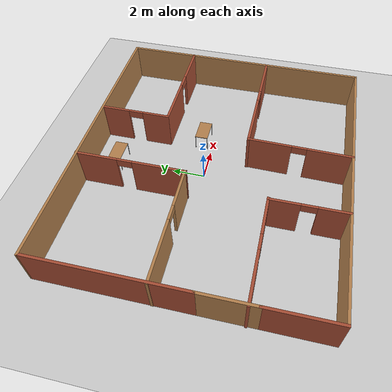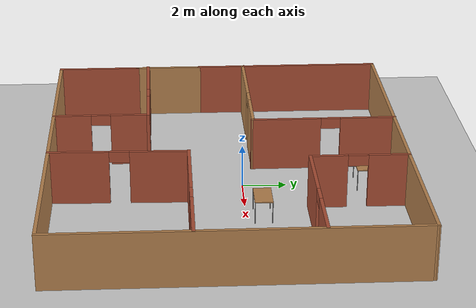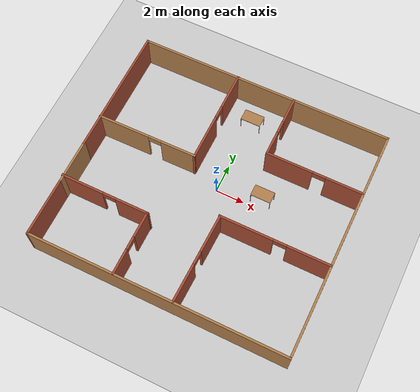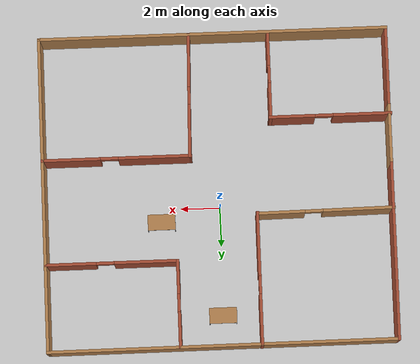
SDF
<sdf version="1.6">
 <world name="default">
  <model name="ground_plane">
   <static>1</static>
   <link name="link">
    <collision name="collision">
     <geometry><plane><normal>0 0 1</normal><size>100 100</size></plane></geometry>
     <surface><friction><ode><mu>100</mu><mu2>50</mu2></ode></friction></surface>
    </collision>
    <visual name="visual">
     <cast_shadows>0</cast_shadows>
     <geometry><plane><normal>0 0 1</normal><size>100 100</size></plane></geometry>
     <material>
      <script><uri>file://media/materials/scripts/gazebo.material</uri><name>Gazebo/Grey</name></script>
     </material>
    </visual>
   </link>
  </model>
  <model name="my_building">
   <pose>0.059936 -0.714894 0 0 -0 0</pose>
   <link name="Wall_1">
    <collision name="Wall_1_Collision">
     <geometry><box><size>3.25 0.15 2.5</size></box></geometry>
     <pose>0 0 1.25 0 -0 0</pose>
    </collision>
    <visual name="Wall_1_Visual">
     <pose>0 0 1.25 0 -0 0</pose>
     <geometry><box><size>3.25 0.15 2.5</size></box></geometry>
     <material>
      <script><uri>file://media/materials/scripts/gazebo.material</uri><name>Gazebo/Wood</name></script>
      <ambient>1 1 1 1</ambient>
     </material>
    </visual>
    <pose>-8.76994 -2.52511 0 0 0 -1.5708</pose>
   </link>
   <link name="Wall_10">
    <pose>-1.91645 4.60169 0 0 -0 1.5708</pose>
    <visual name="Wall_10_Visual_0">
     <pose>-1.75539 0 1.25 0 -0 0</pose>
     <geometry><box><size>3.26293 0.15 2.5</size></box></geometry>
     <material>
      <script><uri>file://media/materials/scripts/gazebo.material</uri><name>Gazebo/Bricks</name></script>
      <ambient>1 1 1 1</ambient>
     </material>
    </visual>
    <collision name="Wall_10_Collision_0">
     <geometry><box><size>3.26293 0.15 2.5</size></box></geometry>
     <pose>-1.75539 0 1.25 0 -0 0</pose>
    </collision>
    <visual name="Wall_10_Visual_1">
     <pose>2.08147 0 1.25 0 -0 0</pose>
     <geometry><box><size>2.61077 0.15 2.5</size></box></geometry>
     <material>
      <script><uri>file://media/materials/scripts/gazebo.material</uri><name>Gazebo/Bricks</name></script>
      <ambient>1 1 1 1</ambient>
     </material>
    </visual>
    <collision name="Wall_10_Collision_1">
     <geometry><box><size>2.61077 0.15 2.5</size></box></geometry>
     <pose>2.08147 0 1.25 0 -0 0</pose>
    </collision>
    <visual name="Wall_10_Visual_2">
     <pose>0.326079 0 2.25 0 -0 0</pose>
     <geometry><box><size>0.9 0.15 0.5</size></box></geometry>
     <material>
      <script><uri>file://media/materials/scripts/gazebo.material</uri><name>Gazebo/Bricks</name></script>
      <ambient>1 1 1 1</ambient>
     </material>
    </visual>
    <collision name="Wall_10_Collision_2">
     <geometry><box><size>0.9 0.15 0.5</size></box></geometry>
     <pose>0.326079 0 2.25 0 -0 0</pose>
    </collision>
   </link>
   <link name="Wall_12">
    <pose>2.18846 5.72608 0 0 0 -1.5708</pose>
    <visual name="Wall_12_Visual_0">
     <pose>-1.31814 0 1.25 0 -0 0</pose>
     <geometry><box><size>1.86373 0.15 2.5</size></box></geometry>
     <material>
      <script><uri>file://media/materials/scripts/gazebo.material</uri><name>Gazebo/Bricks</name></script>
      <ambient>1 1 1 1</ambient>
     </material>
    </visual>
    <collision name="Wall_12_Collision_0">
     <geometry><box><size>1.86373 0.15 2.5</size></box></geometry>
     <pose>-1.31814 0 1.25 0 -0 0</pose>
    </collision>
    <visual name="Wall_12_Visual_1">
     <pose>1.38186 0 1.25 0 -0 0</pose>
     <geometry><box><size>1.73627 0.15 2.5</size></box></geometry>
     <material>
      <script><uri>file://media/materials/scripts/gazebo.material</uri><name>Gazebo/Bricks</name></script>
      <ambient>1 1 1 1</ambient>
     </material>
    </visual>
    <collision name="Wall_12_Collision_1">
     <geometry><box><size>1.73627 0.15 2.5</size></box></geometry>
     <pose>1.38186 0 1.25 0 -0 0</pose>
    </collision>
    <visual name="Wall_12_Visual_2">
     <pose>0.063728 0 2.25 0 -0 0</pose>
     <geometry><box><size>0.9 0.15 0.5</size></box></geometry>
     <material>
      <script><uri>file://media/materials/scripts/gazebo.material</uri><name>Gazebo/Bricks</name></script>
      <ambient>1 1 1 1</ambient>
     </material>
    </visual>
    <collision name="Wall_12_Collision_2">
     <geometry><box><size>0.9 0.15 0.5</size></box></geometry>
     <pose>0.063728 0 2.25 0 -0 0</pose>
    </collision>
   </link>
   <link name="Wall_13">
    <pose>5.48846 3.55108 0 0 -0 0</pose>
    <visual name="Wall_13_Visual_0">
     <pose>-1.74353 0 1.25 0 -0 0</pose>
     <geometry><box><size>3.26293 0.15 2.5</size></box></geometry>
     <material>
      <script><uri>file://media/materials/scripts/gazebo.material</uri><name>Gazebo/Bricks</name></script>
      <ambient>1 1 1 1</ambient>
     </material>
    </visual>
    <collision name="Wall_13_Collision_0">
     <geometry><box><size>3.26293 0.15 2.5</size></box></geometry>
     <pose>-1.74353 0 1.25 0 -0 0</pose>
    </collision>
    <visual name="Wall_13_Visual_1">
     <pose>2.08147 0 1.25 0 -0 0</pose>
     <geometry><box><size>2.58707 0.15 2.5</size></box></geometry>
     <material>
      <script><uri>file://media/materials/scripts/gazebo.material</uri><name>Gazebo/Bricks</name></script>
      <ambient>1 1 1 1</ambient>
     </material>
    </visual>
    <collision name="Wall_13_Collision_1">
     <geometry><box><size>2.58707 0.15 2.5</size></box></geometry>
     <pose>2.08147 0 1.25 0 -0 0</pose>
    </collision>
    <visual name="Wall_13_Visual_2">
     <pose>0.337933 0 2.25 0 -0 0</pose>
     <geometry><box><size>0.9 0.15 0.5</size></box></geometry>
     <material>
      <script><uri>file://media/materials/scripts/gazebo.material</uri><name>Gazebo/Bricks</name></script>
      <ambient>1 1 1 1</ambient>
     </material>
    </visual>
    <collision name="Wall_13_Collision_2">
     <geometry><box><size>0.9 0.15 0.5</size></box></geometry>
     <pose>0.337933 0 2.25 0 -0 0</pose>
    </collision>
   </link>
   <link name="Wall_15">
    <pose>-5.78798 -3.53742 0 0 -0 0</pose>
    <visual name="Wall_15_Visual_0">
     <pose>-1.62574 0 1.25 0 -0 0</pose>
     <geometry><box><size>2.98309 0.15 2.5</size></box></geometry>
     <material>
      <script><uri>file://media/materials/scripts/gazebo.material</uri><name>Gazebo/Bricks</name></script>
      <ambient>1 1 1 1</ambient>
     </material>
    </visual>
    <collision name="Wall_15_Collision_0">
     <geometry><box><size>2.98309 0.15 2.5</size></box></geometry>
     <pose>-1.62574 0 1.25 0 -0 0</pose>
    </collision>
    <visual name="Wall_15_Visual_1">
     <pose>1.94155 0 1.25 0 -0 0</pose>
     <geometry><box><size>2.35149 0.15 2.5</size></box></geometry>
     <material>
      <script><uri>file://media/materials/scripts/gazebo.material</uri><name>Gazebo/Bricks</name></script>
      <ambient>1 1 1 1</ambient>
     </material>
    </visual>
    <collision name="Wall_15_Collision_1">
     <geometry><box><size>2.35149 0.15 2.5</size></box></geometry>
     <pose>1.94155 0 1.25 0 -0 0</pose>
    </collision>
    <visual name="Wall_15_Visual_2">
     <pose>0.315801 0 2.25 0 -0 0</pose>
     <geometry><box><size>0.9 0.15 0.5</size></box></geometry>
     <material>
      <script><uri>file://media/materials/scripts/gazebo.material</uri><name>Gazebo/Bricks</name></script>
      <ambient>1 1 1 1</ambient>
     </material>
    </visual>
    <collision name="Wall_15_Collision_2">
     <geometry><box><size>0.9 0.15 0.5</size></box></geometry>
     <pose>0.315801 0 2.25 0 -0 0</pose>
    </collision>
   </link>
   <link name="Wall_16">
    <pose>-2.78067 -5.71242 0 0 0 -1.5708</pose>
    <visual name="Wall_16_Visual_0">
     <pose>-1.33563 0 1.25 0 -0 0</pose>
     <geometry><box><size>1.82875 0.15 2.5</size></box></geometry>
     <material>
      <script><uri>file://media/materials/scripts/gazebo.material</uri><name>Gazebo/Bricks</name></script>
      <ambient>1 1 1 1</ambient>
     </material>
    </visual>
    <collision name="Wall_16_Collision_0">
     <geometry><box><size>1.82875 0.15 2.5</size></box></geometry>
     <pose>-1.33563 0 1.25 0 -0 0</pose>
    </collision>
    <visual name="Wall_16_Visual_1">
     <pose>1.36437 0 1.25 0 -0 0</pose>
     <geometry><box><size>1.77125 0.15 2.5</size></box></geometry>
     <material>
      <script><uri>file://media/materials/scripts/gazebo.material</uri><name>Gazebo/Bricks</name></script>
      <ambient>1 1 1 1</ambient>
     </material>
    </visual>
    <collision name="Wall_16_Collision_1">
     <geometry><box><size>1.77125 0.15 2.5</size></box></geometry>
     <pose>1.36437 0 1.25 0 -0 0</pose>
    </collision>
    <visual name="Wall_16_Visual_2">
     <pose>0.028748 0 2.25 0 -0 0</pose>
     <geometry><box><size>0.9 0.15 0.5</size></box></geometry>
     <material>
      <script><uri>file://media/materials/scripts/gazebo.material</uri><name>Gazebo/Bricks</name></script>
      <ambient>1 1 1 1</ambient>
     </material>
    </visual>
    <collision name="Wall_16_Collision_2">
     <geometry><box><size>0.9 0.15 0.5</size></box></geometry>
     <pose>0.028748 0 2.25 0 -0 0</pose>
    </collision>
   </link>
   <link name="Wall_18">
    <pose>1.31396 -4.82289 0 0 -0 1.54814</pose>
    <visual name="Wall_18_Visual_0">
     <pose>-1.79453 0 1.25 0 -0 0</pose>
     <geometry><box><size>2.73664 0.15 2.5</size></box></geometry>
     <material>
      <script><uri>file://media/materials/scripts/gazebo.material</uri><name>Gazebo/Bricks</name></script>
      <ambient>1 1 1 1</ambient>
     </material>
    </visual>
    <collision name="Wall_18_Collision_0">
     <geometry><box><size>2.73664 0.15 2.5</size></box></geometry>
     <pose>-1.79453 0 1.25 0 -0 0</pose>
    </collision>
    <visual name="Wall_18_Visual_1">
     <pose>1.81832 0 1.25 0 -0 0</pose>
     <geometry><box><size>2.68905 0.15 2.5</size></box></geometry>
     <material>
      <script><uri>file://media/materials/scripts/gazebo.material</uri><name>Gazebo/Bricks</name></script>
      <ambient>1 1 1 1</ambient>
     </material>
    </visual>
    <collision name="Wall_18_Collision_1">
     <geometry><box><size>2.68905 0.15 2.5</size></box></geometry>
     <pose>1.81832 0 1.25 0 -0 0</pose>
    </collision>
    <visual name="Wall_18_Visual_2">
     <pose>0.023794 0 2.25 0 -0 0</pose>
     <geometry><box><size>0.9 0.15 0.5</size></box></geometry>
     <material>
      <script><uri>file://media/materials/scripts/gazebo.material</uri><name>Gazebo/Bricks</name></script>
      <ambient>1 1 1 1</ambient>
     </material>
    </visual>
    <collision name="Wall_18_Collision_2">
     <geometry><box><size>0.9 0.15 0.5</size></box></geometry>
     <pose>0.023794 0 2.25 0 -0 0</pose>
    </collision>
   </link>
   <link name="Wall_19">
    <pose>5.08619 -1.73583 0 0 -0 0</pose>
    <visual name="Wall_19_Visual_0">
     <pose>-1.95341 0 1.25 0 -0 0</pose>
     <geometry><box><size>3.71767 0.15 2.5</size></box></geometry>
     <material>
      <script><uri>file://media/materials/scripts/gazebo.material</uri><name>Gazebo/Bricks</name></script>
      <ambient>1 1 1 1</ambient>
     </material>
    </visual>
    <collision name="Wall_19_Collision_0">
     <geometry><box><size>3.71767 0.15 2.5</size></box></geometry>
     <pose>-1.95341 0 1.25 0 -0 0</pose>
    </collision>
    <visual name="Wall_19_Visual_1">
     <pose>2.30884 0 1.25 0 -0 0</pose>
     <geometry><box><size>3.00683 0.15 2.5</size></box></geometry>
     <material>
      <script><uri>file://media/materials/scripts/gazebo.material</uri><name>Gazebo/Bricks</name></script>
      <ambient>1 1 1 1</ambient>
     </material>
    </visual>
    <collision name="Wall_19_Collision_1">
     <geometry><box><size>3.00683 0.15 2.5</size></box></geometry>
     <pose>2.30884 0 1.25 0 -0 0</pose>
    </collision>
    <visual name="Wall_19_Visual_2">
     <pose>0.355423 0 2.25 0 -0 0</pose>
     <geometry><box><size>0.9 0.15 0.5</size></box></geometry>
     <material>
      <script><uri>file://media/materials/scripts/gazebo.material</uri><name>Gazebo/Bricks</name></script>
      <ambient>1 1 1 1</ambient>
     </material>
    </visual>
    <collision name="Wall_19_Collision_2">
     <geometry><box><size>0.9 0.15 0.5</size></box></geometry>
     <pose>0.355423 0 2.25 0 -0 0</pose>
    </collision>
   </link>
   <link name="Wall_3">
    <collision name="Wall_3_Collision">
     <geometry><box><size>4 0.15 2.5</size></box></geometry>
     <pose>0 0 1.25 0 -0 0</pose>
    </collision>
    <visual name="Wall_3_Visual">
     <pose>0 0 1.25 0 -0 0</pose>
     <geometry><box><size>4 0.15 2.5</size></box></geometry>
     <material>
      <script><uri>file://media/materials/scripts/gazebo.material</uri><name>Gazebo/Bricks</name></script>
      <ambient>1 1 1 1</ambient>
     </material>
    </visual>
    <pose>-8.76994 -6.00011 0 0 0 -1.5708</pose>
   </link>
   <link name="Wall_4">
    <collision name="Wall_4_Collision">
     <geometry><box><size>17.75 0.15 2.5</size></box></geometry>
     <pose>0 0 1.25 0 -0 0</pose>
    </collision>
    <visual name="Wall_4_Visual">
     <pose>0 0 1.25 0 -0 0</pose>
     <geometry><box><size>17.75 0.15 2.5</size></box></geometry>
     <material>
      <script><uri>file://media/materials/scripts/gazebo.material</uri><name>Gazebo/Wood</name></script>
      <ambient>1 1 1 1</ambient>
     </material>
    </visual>
    <pose>0.030064 -7.92511 0 0 -0 0</pose>
   </link>
   <link name="Wall_5">
    <collision name="Wall_5_Collision">
     <geometry><box><size>16 0.15 2.5</size></box></geometry>
     <pose>0 0 1.25 0 -0 0</pose>
    </collision>
    <visual name="Wall_5_Visual">
     <pose>0 0 1.25 0 -0 0</pose>
     <geometry><box><size>16 0.15 2.5</size></box></geometry>
     <material>
      <script><uri>file://media/materials/scripts/gazebo.material</uri><name>Gazebo/Wood</name></script>
      <ambient>1 1 1 1</ambient>
     </material>
    </visual>
    <pose>8.83006 -0.000106 0 0 -0 1.5708</pose>
   </link>
   <link name="Wall_6">
    <collision name="Wall_6_Collision">
     <geometry><box><size>17.7501 0.15 2.5</size></box></geometry>
     <pose>0 0 1.25 0 -0 0</pose>
    </collision>
    <visual name="Wall_6_Visual">
     <pose>0 0 1.25 0 -0 0</pose>
     <geometry><box><size>17.7501 0.15 2.5</size></box></geometry>
     <material>
      <script><uri>file://media/materials/scripts/gazebo.material</uri><name>Gazebo/Wood</name></script>
      <ambient>1 1 1 1</ambient>
     </material>
    </visual>
    <pose>0.030064 7.89989 0 0 0 -3.13875</pose>
   </link>
   <link name="Wall_7">
    <collision name="Wall_7_Collision">
     <geometry><box><size>9 0.15 2.5</size></box></geometry>
     <pose>0 0 1.25 0 -0 0</pose>
    </collision>
    <visual name="Wall_7_Visual">
     <pose>0 0 1.25 0 -0 0</pose>
     <geometry><box><size>9 0.15 2.5</size></box></geometry>
     <material>
      <script><uri>file://media/materials/scripts/gazebo.material</uri><name>Gazebo/Bricks</name></script>
      <ambient>1 1 1 1</ambient>
     </material>
    </visual>
    <pose>-8.76994 3.44989 0 0 0 -1.5708</pose>
   </link>
   <link name="Wall_9">
    <pose>-5.35587 1.28984 0 0 -0 0.01017</pose>
    <visual name="Wall_9_Visual_0">
     <pose>-1.69114 0 1.25 0 -0 0</pose>
     <geometry><box><size>3.64666 0.15 2.5</size></box></geometry>
     <material>
      <script><uri>file://media/materials/scripts/gazebo.material</uri><name>Gazebo/Wood</name></script>
      <ambient>1 1 1 1</ambient>
     </material>
    </visual>
    <collision name="Wall_9_Collision_0">
     <geometry><box><size>3.64666 0.15 2.5</size></box></geometry>
     <pose>-1.69114 0 1.25 0 -0 0</pose>
    </collision>
    <visual name="Wall_9_Visual_1">
     <pose>2.27333 0 1.25 0 -0 0</pose>
     <geometry><box><size>2.48228 0.15 2.5</size></box></geometry>
     <material>
      <script><uri>file://media/materials/scripts/gazebo.material</uri><name>Gazebo/Wood</name></script>
      <ambient>1 1 1 1</ambient>
     </material>
    </visual>
    <collision name="Wall_9_Collision_1">
     <geometry><box><size>2.48228 0.15 2.5</size></box></geometry>
     <pose>2.27333 0 1.25 0 -0 0</pose>
    </collision>
    <visual name="Wall_9_Visual_2">
     <pose>0.582193 0 2.25 0 -0 0</pose>
     <geometry><box><size>0.9 0.15 0.5</size></box></geometry>
     <material>
      <script><uri>file://media/materials/scripts/gazebo.material</uri><name>Gazebo/Wood</name></script>
      <ambient>1 1 1 1</ambient>
     </material>
    </visual>
    <collision name="Wall_9_Collision_2">
     <geometry><box><size>0.9 0.15 0.5</size></box></geometry>
     <pose>0.582193 0 2.25 0 -0 0</pose>
    </collision>
   </link>
   <static>1</static>
  </model>
  <model name="table">
   <static>0</static>
   <link name="link">
    <collision name="surface">
     <pose>0 0 1 0 -0 0</pose>
     <geometry><box><size>1.5 0.8 0.03</size></box></geometry>
     <surface><friction><ode><mu>0.6</mu><mu2>0.6</mu2></ode></friction></surface>
    </collision>
    <visual name="visual1">
     <pose>0 0 1 0 -0 0</pose>
     <geometry><box><size>1.4 0.8 0.04</size></box></geometry>
     <material>
      <script><uri>file://media/materials/scripts/gazebo.material</uri><name>Gazebo/Wood</name></script>
     </material>
    </visual>
    <collision name="front_left_leg">
     <pose>0.68 0.38 0.5 0 -0 0</pose>
     <geometry><cylinder><radius>0.02</radius><length>1</length></cylinder></geometry>
    </collision>
    <visual name="front_left_leg">
     <pose>0.68 0.38 0.5 0 -0 0</pose>
     <geometry><cylinder><radius>0.02</radius><length>1</length></cylinder></geometry>
     <material>
      <script><uri>file://media/materials/scripts/gazebo.material</uri><name>Gazebo/Grey</name></script>
     </material>
    </visual>
    <collision name="front_right_leg">
     <pose>0.68 -0.38 0.5 0 -0 0</pose>
     <geometry><cylinder><radius>0.02</radius><length>1</length></cylinder></geometry>
    </collision>
    <visual name="front_right_leg">
     <pose>0.68 -0.38 0.5 0 -0 0</pose>
     <geometry><cylinder><radius>0.02</radius><length>1</length></cylinder></geometry>
     <material>
      <script><uri>file://media/materials/scripts/gazebo.material</uri><name>Gazebo/Grey</name></script>
     </material>
    </visual>
    <collision name="back_right_leg">
     <pose>-0.68 -0.38 0.5 0 -0 0</pose>
     <geometry><cylinder><radius>0.02</radius><length>1</length></cylinder></geometry>
    </collision>
    <visual name="back_right_leg">
     <pose>-0.68 -0.38 0.5 0 -0 0</pose>
     <geometry><cylinder><radius>0.02</radius><length>1</length></cylinder></geometry>
     <material>
      <script><uri>file://media/materials/scripts/gazebo.material</uri><name>Gazebo/Grey</name></script>
     </material>
    </visual>
    <collision name="back_left_leg">
     <pose>-0.68 0.38 0.5 0 -0 0</pose>
     <geometry><cylinder><radius>0.02</radius><length>1</length></cylinder></geometry>
    </collision>
    <visual name="back_left_leg">
     <pose>-0.68 0.38 0.5 0 -0 0</pose>
     <geometry><cylinder><radius>0.02</radius><length>1</length></cylinder></geometry>
     <material>
      <script><uri>file://media/materials/scripts/gazebo.material</uri><name>Gazebo/Grey</name></script>
     </material>
    </visual>
    <inertial>
     <inertia><ixx>1</ixx><ixy>0</ixy><ixz>0</ixz><iyy>1</iyy><iyz>0</iyz><izz>1</izz></inertia>
     <mass>1</mass>
    </inertial>
   </link>
   <pose>3.00509 0.723212 -1e-06 -1e-06 1e-06 0</pose>
  </model>
  <model name="table_1">
   <static>0</static>
   <link name="link">
    <collision name="surface">
     <pose>0 0 1 0 -0 0</pose>
     <geometry><box><size>1.5 0.8 0.03</size></box></geometry>
     <surface><friction><ode><mu>0.6</mu><mu2>0.6</mu2></ode></friction></surface>
    </collision>
    <visual name="visual1">
     <pose>0 0 1 0 -0 0</pose>
     <geometry><box><size>1.4 0.8 0.04</size></box></geometry>
     <material>
      <script><uri>file://media/materials/scripts/gazebo.material</uri><name>Gazebo/Wood</name></script>
     </material>
    </visual>
    <collision name="front_left_leg">
     <pose>0.68 0.38 0.5 0 -0 0</pose>
     <geometry><cylinder><radius>0.02</radius><length>1</length></cylinder></geometry>
    </collision>
    <visual name="front_left_leg">
     <pose>0.68 0.38 0.5 0 -0 0</pose>
     <geometry><cylinder><radius>0.02</radius><length>1</length></cylinder></geometry>
     <material>
      <script><uri>file://media/materials/scripts/gazebo.material</uri><name>Gazebo/Grey</name></script>
     </material>
    </visual>
    <collision name="front_right_leg">
     <pose>0.68 -0.38 0.5 0 -0 0</pose>
     <geometry><cylinder><radius>0.02</radius><length>1</length></cylinder></geometry>
    </collision>
    <visual name="front_right_leg">
     <pose>0.68 -0.38 0.5 0 -0 0</pose>
     <geometry><cylinder><radius>0.02</radius><length>1</length></cylinder></geometry>
     <material>
      <script><uri>file://media/materials/scripts/gazebo.material</uri><name>Gazebo/Grey</name></script>
     </material>
    </visual>
    <collision name="back_right_leg">
     <pose>-0.68 -0.38 0.5 0 -0 0</pose>
     <geometry><cylinder><radius>0.02</radius><length>1</length></cylinder></geometry>
    </collision>
    <visual name="back_right_leg">
     <pose>-0.68 -0.38 0.5 0 -0 0</pose>
     <geometry><cylinder><radius>0.02</radius><length>1</length></cylinder></geometry>
     <material>
      <script><uri>file://media/materials/scripts/gazebo.material</uri><name>Gazebo/Grey</name></script>
     </material>
    </visual>
    <collision name="back_left_leg">
     <pose>-0.68 0.38 0.5 0 -0 0</pose>
     <geometry><cylinder><radius>0.02</radius><length>1</length></cylinder></geometry>
    </collision>
    <visual name="back_left_leg">
     <pose>-0.68 0.38 0.5 0 -0 0</pose>
     <geometry><cylinder><radius>0.02</radius><length>1</length></cylinder></geometry>
     <material>
      <script><uri>file://media/materials/scripts/gazebo.material</uri><name>Gazebo/Grey</name></script>
     </material>
    </visual>
    <inertial>
     <inertia><ixx>1</ixx><ixy>0</ixy><ixz>0</ixz><iyy>1</iyy><iyz>0</iyz><izz>1</izz></inertia>
     <mass>1</mass>
    </inertial>
   </link>
   <pose>0.05125 5.57729 -2e-06 0 -0 0</pose>
  </model>
 </world>
</sdf>
